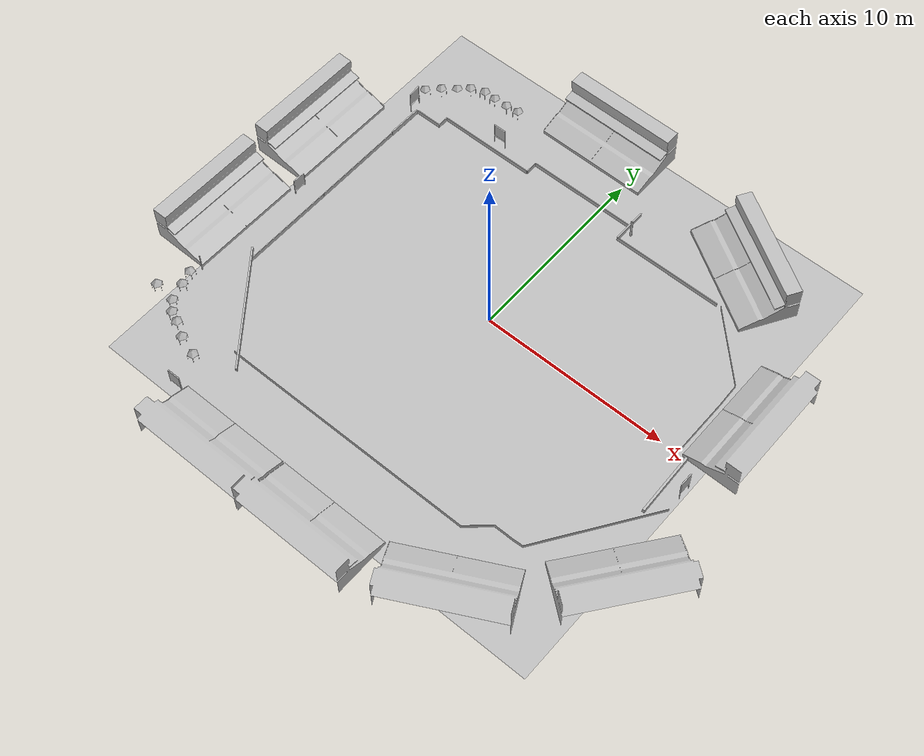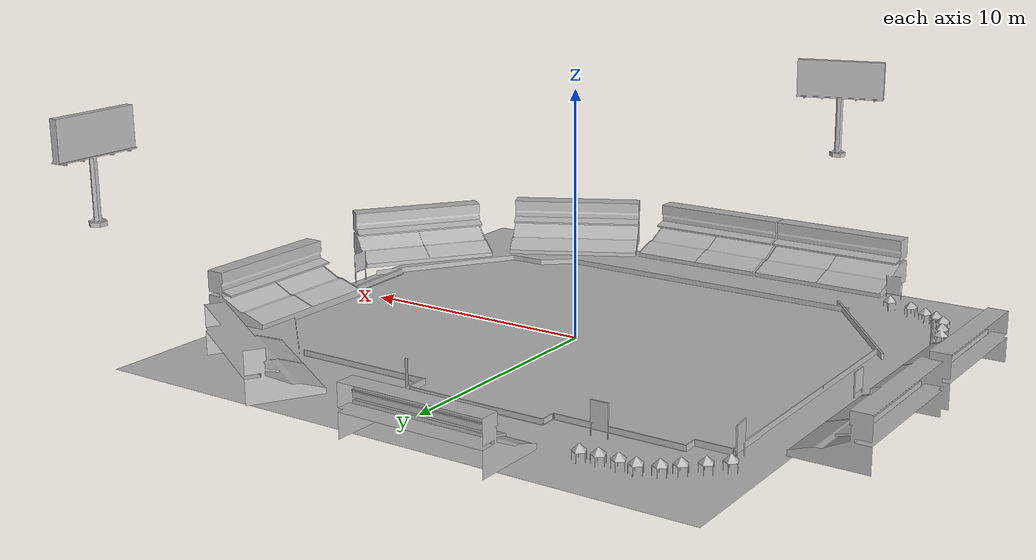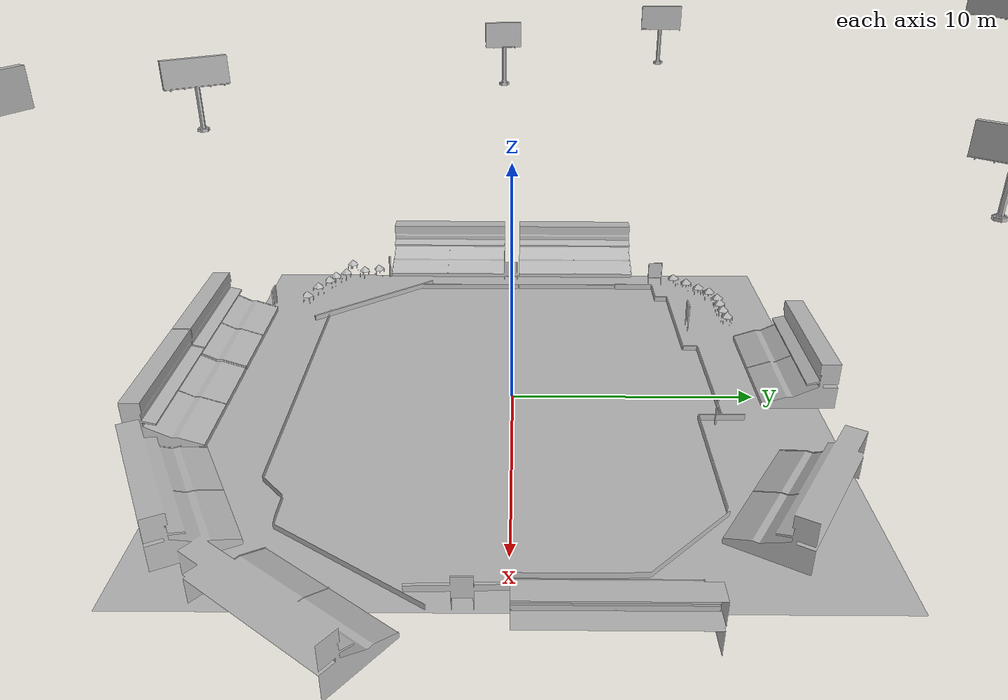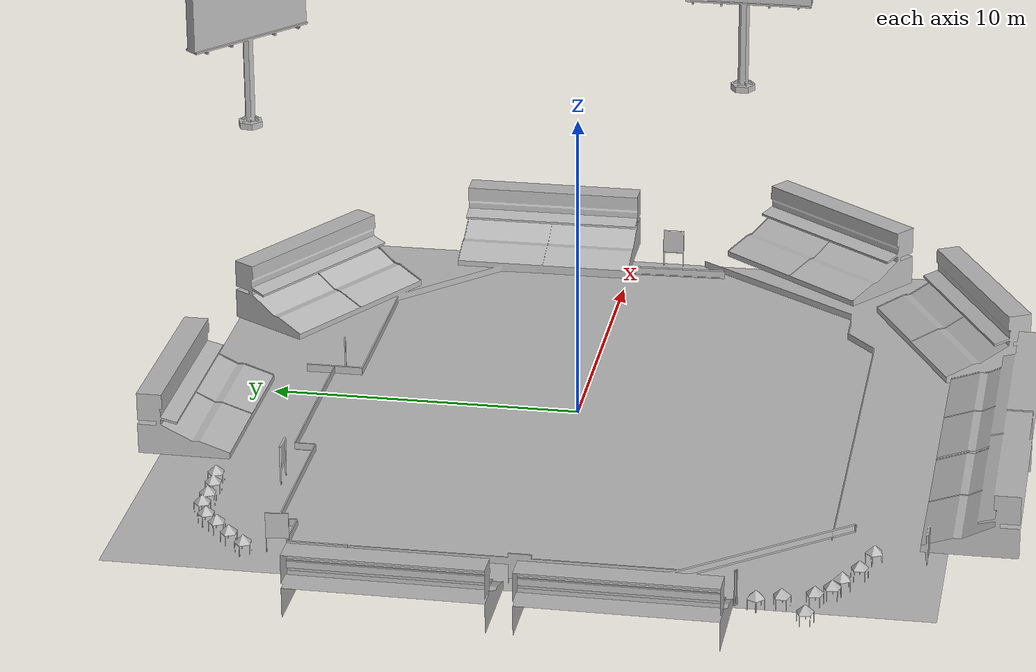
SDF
<?xml version='1.0' encoding='utf-8'?>
<sdf version="1.4">
<model name="template_model">
<link name="track">
<collision name="collision">
<pose>0 0 0 0 0 0</pose>
<geometry>
<mesh>
<uri>model://meshes/2022_april_pro/2022_april_pro_collision.dae</uri>
</mesh>
</geometry>
</collision>
<visual name="visual">
<pose>0 0 0 0 0 0</pose>
<geometry>
<mesh>
<uri>model://meshes/2022_april_pro/2022_april_pro.dae</uri>
</mesh>
</geometry>
</visual>
</link>
<link name="background">
<visual name="visual">
<pose>-2 0 0 0 0 0</pose>
<geometry>
<mesh>
<uri>model://meshes/2022_april_pro/background.dae</uri>
</mesh>
</geometry>
</visual>
</link>
<static>1</static>
</model>
</sdf>
